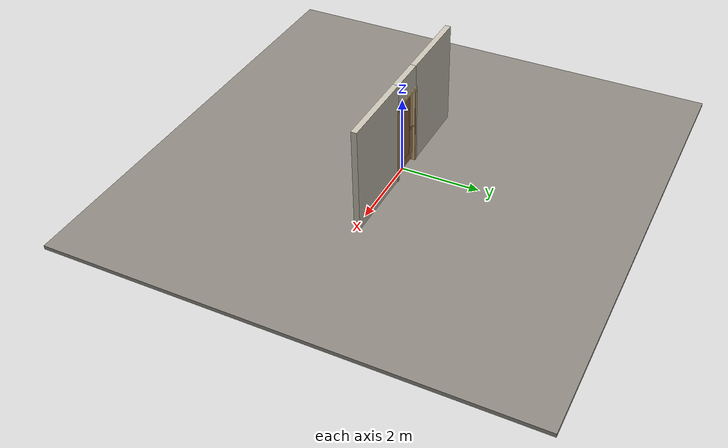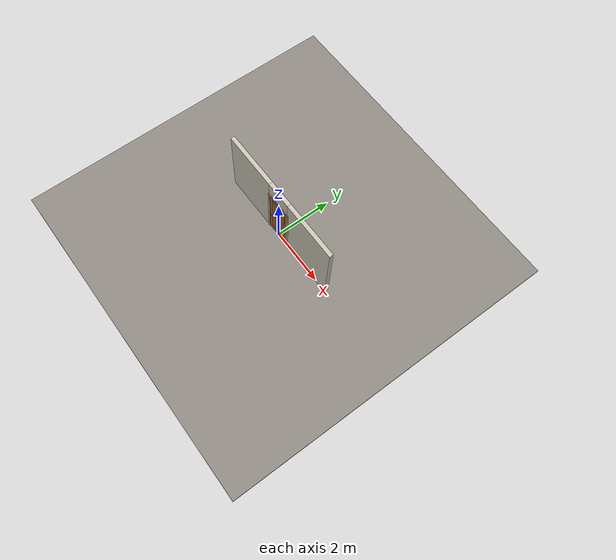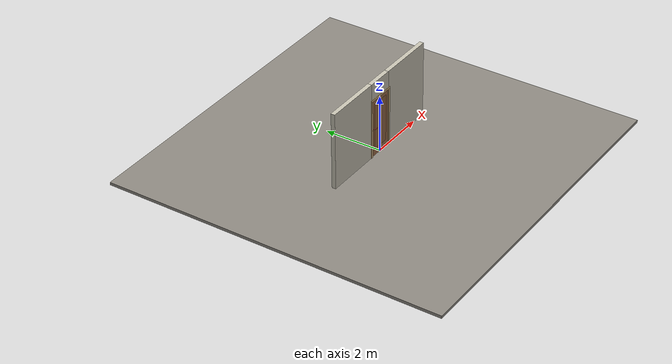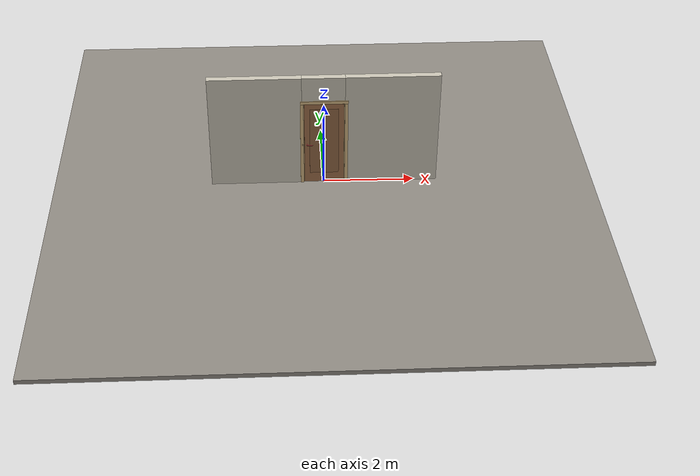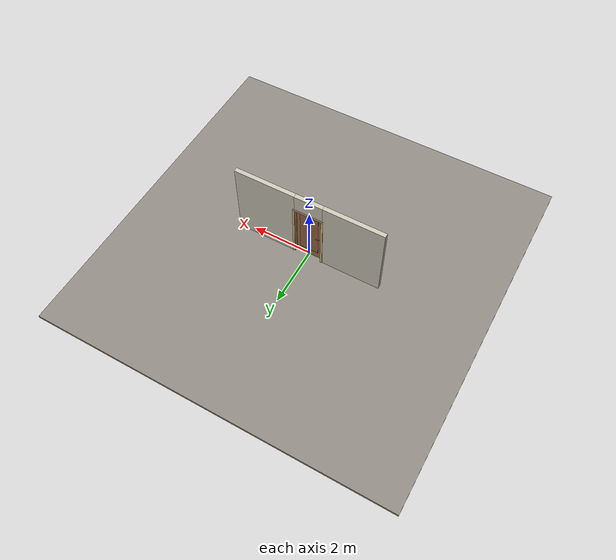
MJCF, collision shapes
<?xml version="1.0" ?>
<mujoco model="db0571_swing_single_full">
  <compiler angle="radian" meshdir="../../hardware" texturedir="../../textures" autolimits="true" inertiafromgeom="false"/>
  <option timestep="0.002" integrator="implicitfast" cone="elliptic" impratio="10" noslip_iterations="3">
    <flag multiccd="enable"/>
  </option>
  <size memory="16M"/>
  <default>
    <geom condim="4" solref="0.005 1" solimp="0.95 0.99 0.001"/>
    <joint solreflimit="0.005 1" solimplimit="0.95 0.99 0.001"/>
    <tendon solreflimit="0.005 1"/>
    <equality solref="0.002 1"/>
  </default>
  <visual>
    <headlight ambient="0.4 0.4 0.4" diffuse="0.7 0.7 0.7" specular="0.2 0.2 0.2"/>
    <quality shadowsize="4096"/>
    <map znear="0.01" zfar="60"/>
  </visual>
  <asset>
    <mesh name="hinge_9ae1f9b7de" file="hinge_9ae1f9b7de.obj"/>
    <mesh name="hinge_jamb_50e97ebc96" file="hinge_jamb_50e97ebc96.obj"/>
    <mesh name="lever_9f02b544cf" file="lever_9f02b544cf.obj"/>
    <material name="mat_floor" rgba="0.55 0.53 0.5 1" specular="0.2" shininess="0.15" reflectance="0"/>
    <material name="mat_wall" rgba="0.78 0.76 0.7 1" specular="0.2" shininess="0.1" reflectance="0"/>
    <material name="mat_leaf" rgba="0.616 0.429 0.281 1" specular="0.2" shininess="0.45" reflectance="0"/>
    <material name="mat_leaf_panel" rgba="0.567 0.395 0.258 1" specular="0.2" shininess="0.45" reflectance="0"/>
    <material name="mat_hinge" rgba="0.65 0.66 0.68 1" specular="0.74" shininess="0.5" reflectance="0.36"/>
    <material name="mat_op_brass_antique" rgba="0.55 0.42 0.22 1" specular="0.74" shininess="0.45" reflectance="0.36"/>
    <material name="mat_trim" rgba="0.85 0.66 0.3 1" specular="0.8" shininess="0.75" reflectance="0.4"/>
    <material name="mat_bolt" rgba="0.85 0.66 0.3 1" specular="0.8" shininess="0.75" reflectance="0.4"/>
    <material name="mat_frame" rgba="0.82 0.7 0.5 1" specular="0.2" shininess="0.45" reflectance="0"/>
    <texture name="skybox" type="skybox" builtin="gradient" rgb1="0.6 0.7 0.85" rgb2="0.9 0.92 0.95" width="256" height="256"/>
  </asset>
  <worldbody>
    <light name="sun" pos="1.5 -2.5 4" dir="-0.3 0.5 -0.8" directional="true" diffuse="0.8 0.8 0.8" specular="0.3 0.3 0.3" castshadow="true"/>
    <light name="fill" pos="-1.5 2.5 3" dir="0.3 -0.5 -0.7" directional="true" diffuse="0.35 0.35 0.4" castshadow="false"/>
    <camera name="robot_view" pos="0 -2.494187 1.734312" xyaxes="1 0 0 0 0.26963 0.962964" fovy="52"/>
    <camera name="far_view" pos="0 2.590187 1.734312" xyaxes="-1 0 0 0 -0.26963 0.962964" fovy="52"/>
    <camera name="iso" pos="-1.932062 -2.087438 2.141063" xyaxes="0.741536 -0.670913 0 0.242917 0.268487 0.932151" fovy="46"/>
    <camera name="detail_handle" pos="-0.0915 -0.8725 1.296" xyaxes="0.97561 0.219512 0 -0.070934 0.315262 0.94635" fovy="38"/>
    <geom name="floor" type="box" size="6 6 0.05" pos="0 0 -0.05" material="mat_floor" group="0" contype="1" conaffinity="1" friction="0.8 0.005 0.0001" density="2400"/>
    <geom name="wall_left" type="box" size="1.00775 0.0725 1.35" pos="-1.49225 0.048 1.35" material="mat_wall" group="0" contype="1" conaffinity="1" friction="0.6 0.005 0.0001" density="800"/>
    <geom name="wall_right" type="box" size="1.02275 0.0725 1.35" pos="1.47725 0.048 1.35" material="mat_wall" group="0" contype="1" conaffinity="1" friction="0.6 0.005 0.0001" density="800"/>
    <geom name="wall_header" type="box" size="0.4695 0.0725 0.303" pos="-0.015 0.048 2.397" material="mat_wall" group="0" contype="1" conaffinity="1" friction="0.6 0.005 0.0001" density="800"/>
    <geom name="hinge_0_jamb" type="mesh" mesh="hinge_jamb_50e97ebc96" pos="0.4325 -0.0245 0.259" quat="0 0 1 0" material="mat_hinge" group="1" contype="0" conaffinity="0" density="7850"/>
    <geom name="hinge_1_jamb" type="mesh" mesh="hinge_jamb_50e97ebc96" pos="0.4325 -0.0245 1.025" quat="0 0 1 0" material="mat_hinge" group="1" contype="0" conaffinity="0" density="7850"/>
    <geom name="hinge_2_jamb" type="mesh" mesh="hinge_jamb_50e97ebc96" pos="0.4325 -0.0245 1.861" quat="0 0 1 0" material="mat_hinge" group="1" contype="0" conaffinity="0" density="7850"/>
    <geom name="jamb_hinge" type="box" size="0.0095 0.0725 1.0225" pos="0.445 0.048 1.0225" material="mat_frame" group="0" contype="1" conaffinity="1" friction="0.6 0.005 0.0001" density="400"/>
    <geom name="strike_1016_wall_n" type="box" size="0.0245 0.056325 0.0167" pos="-0.46 0.064175 1.016" material="mat_frame" group="0" contype="1" conaffinity="1" friction="0.6 0.005 0.0001" density="400"/>
    <geom name="strike_1016_wall_p" type="box" size="0.0245 0.008 0.0167" pos="-0.46 -0.01585 1.016" material="mat_frame" group="0" contype="1" conaffinity="1" friction="0.6 0.005 0.0001" density="400"/>
    <geom name="strike_1016_ramp" type="box" size="0.0245 0.01649 0.0167" pos="-0.464636 -0.028673 1.016" quat="0.977148 0 0 -0.212558" material="mat_frame" group="0" contype="1" conaffinity="1" friction="0.12 0.005 0.0001" density="400"/>
    <geom name="strike_1016_back" type="box" size="0.01615 0.00785 0.0167" pos="-0.46835 0 1.016" material="mat_frame" group="0" contype="1" conaffinity="1" friction="0.6 0.005 0.0001" density="400"/>
    <geom name="jamb_strike_0" type="box" size="0.0245 0.0725 0.49965" pos="-0.46 0.048 0.49965" material="mat_frame" group="0" contype="1" conaffinity="1" friction="0.6 0.005 0.0001" density="400"/>
    <geom name="jamb_strike_1" type="box" size="0.0245 0.0725 0.50615" pos="-0.46 0.048 1.53885" material="mat_frame" group="0" contype="1" conaffinity="1" friction="0.6 0.005 0.0001" density="400"/>
    <geom name="jamb_head" type="box" size="0.4695 0.0725 0.0095" pos="-0.015 0.048 2.0545" material="mat_frame" group="0" contype="1" conaffinity="1" friction="0.6 0.005 0.0001" density="400"/>
    <geom name="head_stud" type="box" size="0.4695 0.0725 0.015" pos="-0.015 0.048 2.079" material="mat_wall" group="0" contype="1" conaffinity="1" friction="0.6 0.005 0.0001" density="500"/>
    <geom name="stop_hinge" type="box" size="0.0055 0.016 1.0225" pos="0.43 0.034 1.0225" material="mat_frame" group="0" contype="1" conaffinity="1" friction="0.6 0.005 0.0001" density="400"/>
    <geom name="stop_strike" type="box" size="0.0055 0.016 1.0225" pos="-0.43 0.034 1.0225" material="mat_frame" group="0" contype="1" conaffinity="1" friction="0.6 0.005 0.0001" density="400"/>
    <geom name="stop_head" type="box" size="0.4355 0.016 0.0055" pos="0 0.034 2.0395" material="mat_frame" group="0" contype="1" conaffinity="1" friction="0.6 0.005 0.0001" density="400"/>
    <geom name="casing_l_n" type="box" size="0.035 0.008 1.032" pos="-0.4845 -0.0325 1.0225" material="mat_frame" group="2" contype="0" conaffinity="0" density="400"/>
    <geom name="casing_r_n" type="box" size="0.035 0.008 1.032" pos="0.4845 -0.0325 1.0225" material="mat_frame" group="2" contype="0" conaffinity="0" density="400"/>
    <geom name="casing_h_n" type="box" size="0.5195 0.008 0.035" pos="0 -0.0325 2.094" material="mat_frame" group="2" contype="0" conaffinity="0" density="400"/>
    <geom name="casing_l_p" type="box" size="0.035 0.008 1.032" pos="-0.4845 0.1285 1.0225" material="mat_frame" group="2" contype="0" conaffinity="0" density="400"/>
    <geom name="casing_r_p" type="box" size="0.035 0.008 1.032" pos="0.4845 0.1285 1.0225" material="mat_frame" group="2" contype="0" conaffinity="0" density="400"/>
    <geom name="casing_h_p" type="box" size="0.5195 0.008 0.035" pos="0 0.1285 2.094" material="mat_frame" group="2" contype="0" conaffinity="0" density="400"/>
    <site name="approach_point" pos="0 -1.5 0" quat="1 0 0 0" size="0.05" rgba="0.2 0.9 0.2 0.5" group="4"/>
    <site name="goal_point" pos="0 1.5 0" quat="1 0 0 0" size="0.05" rgba="0.2 0.9 0.2 0.5" group="4"/>
    <site name="door_plane_center" pos="0 0 1.0225" quat="1 0 0 0" size="0.02" rgba="0.2 0.9 0.2 0.5" group="4"/>
    <body name="leaf" pos="0.4355 0 0">
      <inertial pos="-0.430703 -0.000214 1.025262" mass="32.271701" quat="0.50027 -0.499543 0.50045 0.499736" diaginertia="2.053429836 11.130121502 13.176720896"/>
      <joint name="leaf_hinge" type="hinge" axis="0 0 1" pos="-0.003 -0.0245 0" limited="true" range="0 2.356194" damping="0.254501" frictionloss="0.25823" armature="0.02"/>
      <geom name="leaf_slab" type="box" size="0.432 0.0175 1.016" pos="-0.435 0 1.025" material="mat_leaf" group="0" contype="1" conaffinity="1" friction="0.35 0.005 0.0001" density="1"/>
      <geom name="leaf_panel_0_n" type="box" size="0.31696 0.003 0.83344" pos="-0.435 -0.0205 1.08596" material="mat_leaf_panel" group="1" contype="0" conaffinity="0" density="1"/>
      <geom name="leaf_panel_0_p" type="box" size="0.31696 0.003 0.83344" pos="-0.435 0.0205 1.08596" material="mat_leaf_panel" group="1" contype="0" conaffinity="0" density="1"/>
      <geom name="hinge_0" type="mesh" mesh="hinge_9ae1f9b7de" pos="-0.003 -0.0245 0.259" quat="0 0 1 0" material="mat_hinge" group="1" contype="0" conaffinity="0" density="7850"/>
      <geom name="hinge_1" type="mesh" mesh="hinge_9ae1f9b7de" pos="-0.003 -0.0245 1.025" quat="0 0 1 0" material="mat_hinge" group="1" contype="0" conaffinity="0" density="7850"/>
      <geom name="hinge_2" type="mesh" mesh="hinge_9ae1f9b7de" pos="-0.003 -0.0245 1.861" quat="0 0 1 0" material="mat_hinge" group="1" contype="0" conaffinity="0" density="7850"/>
      <geom name="leaf_latch_bolt_faceplate" type="box" size="0.0006 0.01235 0.0267" pos="-0.8664 0 1.016" material="mat_bolt" group="1" contype="0" conaffinity="0" density="8500"/>
      <site name="leaf_edge_mid" pos="-0.867 0 1.016" quat="1 0 0 0" size="0.02" rgba="0.2 0.9 0.2 0.5" group="4"/>
      <body name="leaf_handle" pos="-0.807 0 1.016">
        <inertial pos="0.028779 0 0" mass="0.970196" quat="0.707107 0 0 -0.707107" diaginertia="0.001765339 0.003138972 0.004726252"/>
        <joint name="leaf_handle_hinge" type="hinge" axis="0 1 0" limited="true" range="0 0.96" damping="0.20055" frictionloss="0.046" stiffness="0.8" springref="-0.577217" armature="0.01"/>
        <geom name="leaf_handle_spindle" type="cylinder" size="0.006 0.0255" pos="0 0 0" quat="0.707107 -0.707107 0 0" material="mat_op_brass_antique" group="1" contype="0" conaffinity="0" density="7850"/>
        <geom name="leaf_handle_lever_n" type="mesh" mesh="lever_9f02b544cf" pos="0 -0.0175 0" quat="0 0 -0.707107 0.707107" material="mat_op_brass_antique" group="1" contype="0" conaffinity="0" density="3000"/>
        <geom name="leaf_handle_lever_col_n" type="capsule" size="0.0095 0.053" pos="0.0625 -0.0725 0" quat="0.707107 0 0.707107 0" material="mat_op_brass_antique" group="3" contype="1" conaffinity="1" rgba="0.8 0.3 0.3 0.25" friction="0.7 0.01 0.0001" density="3000"/>
        <geom name="leaf_handle_hub_col_n" type="cylinder" size="0.012 0.022" pos="0 -0.0475 0" quat="0.707107 -0.707107 0 0" material="mat_op_brass_antique" group="3" contype="1" conaffinity="1" rgba="0.8 0.3 0.3 0.25" friction="0.6 0.005 0.0001" density="3000"/>
        <geom name="leaf_handle_lever_p" type="mesh" mesh="lever_9f02b544cf" pos="0 0.0175 0" quat="0 0 0.707107 0.707107" material="mat_op_brass_antique" group="1" contype="0" conaffinity="0" density="3000"/>
        <geom name="leaf_handle_lever_col_p" type="capsule" size="0.0095 0.053" pos="0.0625 0.0725 0" quat="0.707107 0 0.707107 0" material="mat_op_brass_antique" group="3" contype="1" conaffinity="1" rgba="0.8 0.3 0.3 0.25" friction="0.7 0.01 0.0001" density="3000"/>
        <geom name="leaf_handle_hub_col_p" type="cylinder" size="0.012 0.022" pos="0 0.0475 0" quat="0.707107 -0.707107 0 0" material="mat_op_brass_antique" group="3" contype="1" conaffinity="1" rgba="0.8 0.3 0.3 0.25" friction="0.6 0.005 0.0001" density="3000"/>
        <site name="leaf_handle_grip_n" pos="0.1 -0.0725 0" quat="1 0 0 0" size="0.012" rgba="0.2 0.9 0.2 0.5" group="4"/>
        <site name="leaf_handle_grip_p" pos="0.1 0.0725 0" quat="1 0 0 0" size="0.012" rgba="0.2 0.9 0.2 0.5" group="4"/>
      </body>
      <body name="leaf_latch_bolt" pos="-0.867 0 1.016">
        <inertial pos="0.00865 0 0" mass="0.041419" quat="0.92388 0.382683 0 0" diaginertia="0.000000798 0.000005598 0.000005598"/>
        <joint name="leaf_latch_bolt_slide" type="slide" axis="1 0 0" limited="true" range="0 0.0127" damping="2" frictionloss="0.3" stiffness="300" springref="-0.008333" armature="0.1"/>
        <geom name="leaf_latch_bolt_capsule" type="capsule" size="0.00635 0.015" pos="0.00865 0 0" quat="0.707107 0 -0.707107 0" material="mat_bolt" group="0" contype="1" conaffinity="1" friction="0.2 0.005 0.0001" density="8500"/>
      </body>
    </body>
  </worldbody>
  <tendon>
    <fixed name="leaf_latch_bolt_coupling" limited="true" range="0 10">
      <joint joint="leaf_latch_bolt_slide" coef="1"/>
      <joint joint="leaf_handle_hinge" coef="-0.016711"/>
    </fixed>
  </tendon>
  <sensor>
    <jointpos name="leaf_hinge_pos" joint="leaf_hinge"/>
    <jointvel name="leaf_hinge_vel" joint="leaf_hinge"/>
    <jointpos name="leaf_handle_hinge_pos" joint="leaf_handle_hinge"/>
    <jointvel name="leaf_handle_hinge_vel" joint="leaf_handle_hinge"/>
    <jointpos name="leaf_latch_bolt_slide_pos" joint="leaf_latch_bolt_slide"/>
    <jointvel name="leaf_latch_bolt_slide_vel" joint="leaf_latch_bolt_slide"/>
  </sensor>
</mujoco>
